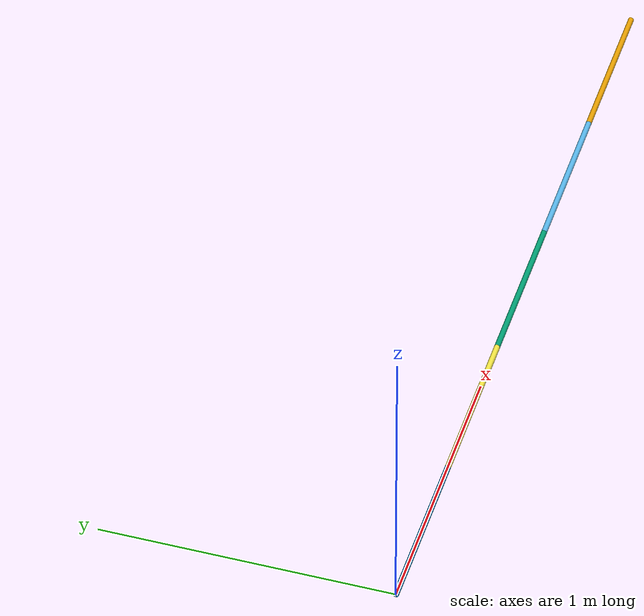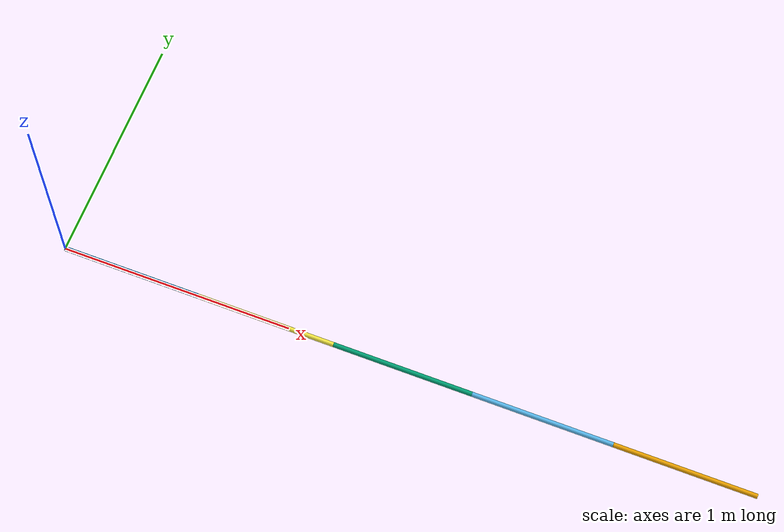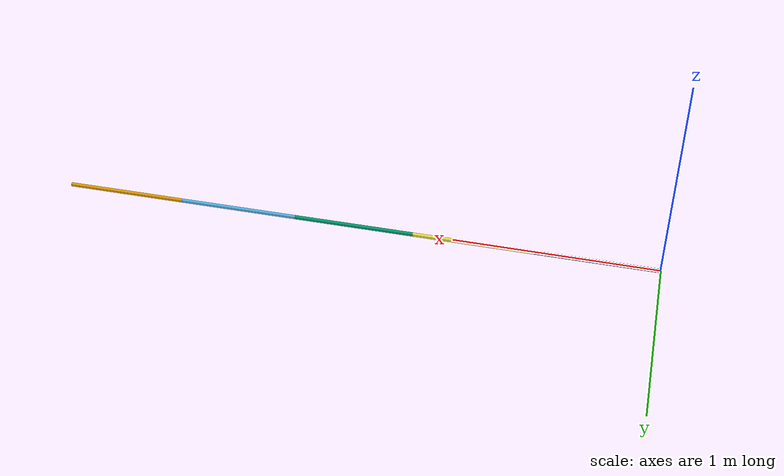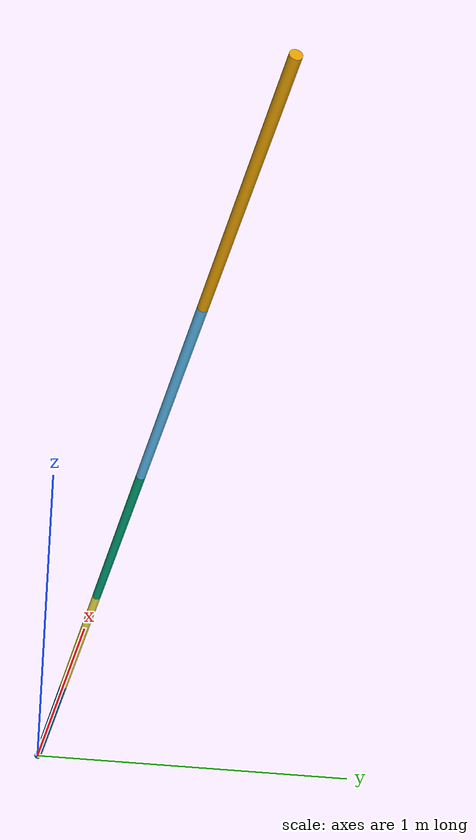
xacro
<?xml version="1.0" ?>
<robot name="tether" xmlns:xacro="http://ros.org/wiki/xacro">

    <!-- Define properties -->
    <xacro:property name="tether_length" value="3" />
    <xacro:property name="tether_radius" value="0.01" />
    <xacro:property name="tether_mass" value="0.1" />
    <xacro:property name="num_elements" value="5" />

    <xacro:property name="elem_length" value="${tether_length/num_elements}" />
    <xacro:property name="elem_mass" value="${tether_mass/num_elements}" />

    <!-- Define link macro -->
    <xacro:macro name="tether_element" params="element_num">
        <link name="element_${element_num}">
            <inertial>
                <origin xyz="${elem_length/2} 0 0" rpy="0 ${pi/2} 0" />
                <mass value="${elem_mass}"/>
                <inertia ixx="${1/12*elem_mass*(3*tether_radius**2 + elem_length**2)}" ixy="0" ixz="0" iyy="${1/12*elem_mass*(3*tether_radius**2 + elem_length**2)}" iyz="0" izz="${1/2*elem_mass*(tether_radius**2)}" />
            </inertial>
            <visual>
                <origin xyz="${elem_length/2} 0 0" rpy="0 ${pi/2} 0" />
                <geometry>
                    <cylinder length="${elem_length}" radius="${tether_radius}"/>
                </geometry>
            </visual>
            <collision>
                <origin xyz="${elem_length/2} 0 0" rpy="0 ${pi/2} 0" />
                <geometry>
                    <cylinder length="${elem_length}" radius="${tether_radius}"/>
                </geometry>
            </collision>
        </link>
    </xacro:macro>

    <!-- Recursive loop to generate multiple elements and joints for said elements -->
    <xacro:macro name="generate_tether" params="elem_num">
        <!-- Generate element and recurse -->
        <xacro:tether_element element_num="${elem_num}" />

        <xacro:if value="${elem_num-1}">
            <xacro:generate_tether elem_num="${elem_num-1}" />
        </xacro:if>

        <!-- Define joints -->
        <xacro:if value="${elem_num-1 > 0}">
            <joint name="joint_${elem_num-1}_to_${elem_num}" type="continuous">
                <axis xyz="0. 0. 1."/>
                <origin xyz="${elem_length} 0 0" rpy="0 0 0"/>
                <parent link="element_${elem_num-1}"/>
                <child link="element_${elem_num}"/>
            </joint>

        </xacro:if>

    </xacro:macro>

    <!-- Call recursive loop to generate tether -->
    <xacro:generate_tether elem_num="${num_elements}" />

</robot>
